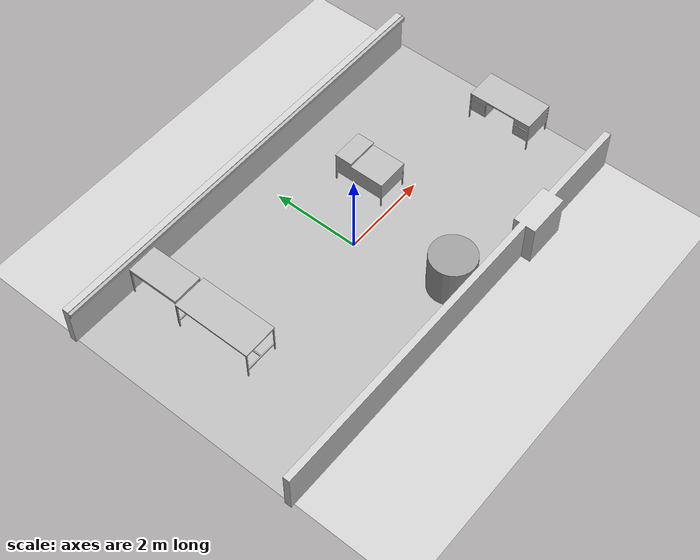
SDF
<sdf version="1.7">
 <world name="default">
  <gravity>0 0 -9.8</gravity>
  <magnetic_field>6e-06 2.3e-05 -4.2e-05</magnetic_field>
  <atmosphere type="adiabatic"/>
  <physics type="ode">
   <max_step_size>0.001</max_step_size>
   <real_time_factor>1</real_time_factor>
   <real_time_update_rate>1000</real_time_update_rate>
  </physics>
  <scene><ambient>0.4 0.4 0.4 1</ambient><background>0.7 0.7 0.7 1</background><shadows>1</shadows></scene>
  <spherical_coordinates>
   <surface_model>EARTH_WGS84</surface_model>
   <latitude_deg>0</latitude_deg>
   <longitude_deg>0</longitude_deg>
   <elevation>0</elevation>
   <heading_deg>0</heading_deg>
  </spherical_coordinates>
  <model name="gplane">
   <link name="body">
    <collision name="gplane_coll">
     <geometry><plane><normal>0 0 1</normal><size>10.075 13.18</size></plane></geometry>
     <surface><contact><ode><kp>1e+06</kp><kd>1</kd></ode></contact></surface>
     <laser_retro>2000</laser_retro>
    </collision>
    <visual name="gplane_vis">
     <geometry><plane><normal>0 0 1</normal><size>10.075 13.18</size></plane></geometry>
     <material>
      <script>
       <uri>model://base_materials/carpet/scripts</uri>
       <uri>model://base_materials/carpet/textures</uri>
       <name>carpet/carpet01</name>
      </script>
     </material>
     <cast_shadows>0</cast_shadows>
    </visual>
    <velocity_decay><linear>0</linear><angular>0</angular></velocity_decay>
   </link>
   <static>1</static>
  </model>
  <light name="inner_point_white1" type="point">
   <pose>4 5 4 0 -0 0</pose>
   <diffuse>0.2 0.2 0.2 1</diffuse>
   <specular>0.1 0.1 0.1 1</specular>
   <attenuation>
    <range>20</range>
    <linear>0.1</linear>
    <constant>0.2</constant>
    <quadratic>0</quadratic>
   </attenuation>
   <cast_shadows>0</cast_shadows>
   <direction>0 0 -1</direction>
   <spot><inner_angle>0</inner_angle><outer_angle>0</outer_angle><falloff>0</falloff></spot>
  </light>
  <light name="inner_point_white2" type="point">
   <pose>4 10 4 0 -0 0</pose>
   <diffuse>0.2 0.2 0.2 1</diffuse>
   <specular>0.1 0.1 0.1 1</specular>
   <attenuation>
    <range>20</range>
    <linear>0.1</linear>
    <constant>0.2</constant>
    <quadratic>0</quadratic>
   </attenuation>
   <cast_shadows>0</cast_shadows>
   <direction>0 0 -1</direction>
   <spot><inner_angle>0</inner_angle><outer_angle>0</outer_angle><falloff>0</falloff></spot>
  </light>
  <light name="inner_point_white3" type="point">
   <pose>8 5 4 0 -0 0</pose>
   <diffuse>0.2 0.2 0.2 1</diffuse>
   <specular>0.1 0.1 0.1 1</specular>
   <attenuation>
    <range>20</range>
    <linear>0.1</linear>
    <constant>0.2</constant>
    <quadratic>0</quadratic>
   </attenuation>
   <cast_shadows>0</cast_shadows>
   <direction>0 0 -1</direction>
   <spot><inner_angle>0</inner_angle><outer_angle>0</outer_angle><falloff>0</falloff></spot>
  </light>
  <light name="inner_point_white4" type="point">
   <pose>8 10 4 0 -0 0</pose>
   <diffuse>0.2 0.2 0.2 1</diffuse>
   <specular>0.1 0.1 0.1 1</specular>
   <attenuation>
    <range>20</range>
    <linear>0.1</linear>
    <constant>0.2</constant>
    <quadratic>0</quadratic>
   </attenuation>
   <cast_shadows>0</cast_shadows>
   <direction>0 0 -1</direction>
   <spot><inner_angle>0</inner_angle><outer_angle>0</outer_angle><falloff>0</falloff></spot>
  </light>
  <light name="inner_point_white5" type="point">
   <pose>4 5 4 0 -0 0</pose>
   <diffuse>0.2 0.2 0.2 1</diffuse>
   <specular>0.1 0.1 0.1 1</specular>
   <attenuation>
    <range>20</range>
    <linear>0.1</linear>
    <constant>0.2</constant>
    <quadratic>0</quadratic>
   </attenuation>
   <cast_shadows>0</cast_shadows>
   <direction>0 0 -1</direction>
   <spot><inner_angle>0</inner_angle><outer_angle>0</outer_angle><falloff>0</falloff></spot>
  </light>
  <light name="inner_point_white6" type="point">
   <pose>4 10 4 0 -0 0</pose>
   <diffuse>0.2 0.2 0.2 1</diffuse>
   <specular>0.1 0.1 0.1 1</specular>
   <attenuation>
    <range>20</range>
    <linear>0.1</linear>
    <constant>0.2</constant>
    <quadratic>0</quadratic>
   </attenuation>
   <cast_shadows>0</cast_shadows>
   <direction>0 0 -1</direction>
   <spot><inner_angle>0</inner_angle><outer_angle>0</outer_angle><falloff>0</falloff></spot>
  </light>
  <light name="inner_point_white7" type="point">
   <pose>8 5 4 0 -0 0</pose>
   <diffuse>0.2 0.2 0.2 1</diffuse>
   <specular>0.1 0.1 0.1 1</specular>
   <attenuation>
    <range>20</range>
    <linear>0.1</linear>
    <constant>0.2</constant>
    <quadratic>0</quadratic>
   </attenuation>
   <cast_shadows>0</cast_shadows>
   <direction>0 0 -1</direction>
   <spot><inner_angle>0</inner_angle><outer_angle>0</outer_angle><falloff>0</falloff></spot>
  </light>
  <light name="inner_point_white8" type="point">
   <pose>8 10 4 0 -0 0</pose>
   <diffuse>0.2 0.2 0.2 1</diffuse>
   <specular>0.1 0.1 0.1 1</specular>
   <attenuation>
    <range>20</range>
    <linear>0.1</linear>
    <constant>0.2</constant>
    <quadratic>0</quadratic>
   </attenuation>
   <cast_shadows>0</cast_shadows>
   <direction>0 0 -1</direction>
   <spot><inner_angle>0</inner_angle><outer_angle>0</outer_angle><falloff>0</falloff></spot>
  </light>
  <model name="Table_05">
   <link name="link_0">
    <inertial>
     <mass>7</mass>
     <inertia>
      <ixx>0.166667</ixx>
      <ixy>0</ixy>
      <ixz>0</ixz>
      <iyy>0.166667</iyy>
      <iyz>0</iyz>
      <izz>0.166667</izz>
     </inertia>
    </inertial>
    <visual name="visual">
     <geometry><mesh><uri>model://BioRoboticsLab/meshes/Table_05.dae</uri><scale>1 1 1</scale></mesh></geometry>
     <material><lighting>1</lighting><shader type="pixel"/></material>
    </visual>
    <collision name="collision">
     <geometry><mesh><uri>model://BioRoboticsLab/meshes/Table_05.dae</uri><scale>1 1 1</scale></mesh></geometry>
     <surface>
      <friction>
       <ode><mu>1</mu><mu2>1</mu2><fdir1>0 0 0</fdir1><slip1>0</slip1><slip2>0</slip2></ode>
       <torsional>
        <coefficient>1</coefficient>
        <patch_radius>0</patch_radius>
        <surface_radius>0</surface_radius>
        <use_patch_radius>1</use_patch_radius>
        <ode><slip>0</slip></ode>
       </torsional>
      </friction>
      <bounce><restitution_coefficient>0</restitution_coefficient><threshold>1e+06</threshold></bounce>
      <contact>
       <collide_without_contact>0</collide_without_contact>
       <collide_without_contact_bitmask>1</collide_without_contact_bitmask>
       <collide_bitmask>1</collide_bitmask>
       <ode>
        <soft_cfm>0</soft_cfm>
        <soft_erp>0.2</soft_erp>
        <kp>1e+13</kp>
        <kd>1</kd>
        <max_vel>0.01</max_vel>
        <min_depth>0</min_depth>
       </ode>
       <bullet>
        <split_impulse>1</split_impulse>
        <split_impulse_penetration_threshold>-0.01</split_impulse_penetration_threshold>
        <soft_cfm>0</soft_cfm>
        <soft_erp>0.2</soft_erp>
        <kp>1e+13</kp>
        <kd>1</kd>
       </bullet>
      </contact>
     </surface>
    </collision>
   </link>
   <static>1</static>
   <pose>-3.23946 2.02988 0 0 -0 1.58727</pose>
  </model>
  <model name="Table_03_0">
   <link name="link_0">
    <inertial>
     <mass>8</mass>
     <inertia>
      <ixx>0.166667</ixx>
      <ixy>0</ixy>
      <ixz>0</ixz>
      <iyy>0.166667</iyy>
      <iyz>0</iyz>
      <izz>0.166667</izz>
     </inertia>
    </inertial>
    <visual name="visual">
     <geometry><mesh><uri>model://BioRoboticsLab/meshes/Table_03.dae</uri><scale>1 1 1</scale></mesh></geometry>
     <material><lighting>1</lighting><shader type="pixel"/></material>
    </visual>
    <collision name="collision">
     <geometry><mesh><uri>model://BioRoboticsLab/meshes/Table_03.dae</uri><scale>1 1 1</scale></mesh></geometry>
     <surface>
      <friction>
       <ode><mu>1</mu><mu2>1</mu2><fdir1>0 0 0</fdir1><slip1>0</slip1><slip2>0</slip2></ode>
       <torsional>
        <coefficient>1</coefficient>
        <patch_radius>0</patch_radius>
        <surface_radius>0</surface_radius>
        <use_patch_radius>1</use_patch_radius>
        <ode><slip>0</slip></ode>
       </torsional>
      </friction>
      <bounce><restitution_coefficient>0</restitution_coefficient><threshold>1e+06</threshold></bounce>
      <contact>
       <collide_without_contact>0</collide_without_contact>
       <collide_without_contact_bitmask>1</collide_without_contact_bitmask>
       <collide_bitmask>1</collide_bitmask>
       <ode>
        <soft_cfm>0</soft_cfm>
        <soft_erp>0.2</soft_erp>
        <kp>1e+13</kp>
        <kd>1</kd>
        <max_vel>0.01</max_vel>
        <min_depth>0</min_depth>
       </ode>
       <bullet>
        <split_impulse>1</split_impulse>
        <split_impulse_penetration_threshold>-0.01</split_impulse_penetration_threshold>
        <soft_cfm>0</soft_cfm>
        <soft_erp>0.2</soft_erp>
        <kp>1e+13</kp>
        <kd>1</kd>
       </bullet>
      </contact>
     </surface>
    </collision>
   </link>
   <static>1</static>
   <pose>-3.22481 0.4922 0 0 0 -1.56459</pose>
  </model>
  <model name="Desk_01">
   <link name="link_0">
    <inertial>
     <mass>35</mass>
     <inertia>
      <ixx>0.166667</ixx>
      <ixy>0</ixy>
      <ixz>0</ixz>
      <iyy>0.166667</iyy>
      <iyz>0</iyz>
      <izz>0.166667</izz>
     </inertia>
    </inertial>
    <visual name="visual">
     <geometry><mesh><uri>model://BioRoboticsLab/meshes/Desk_01.dae</uri><scale>1 1 1</scale></mesh></geometry>
     <material><lighting>1</lighting><shader type="pixel"/></material>
    </visual>
    <collision name="collision">
     <geometry><mesh><uri>model://BioRoboticsLab/meshes/Desk_01.dae</uri><scale>1 1 1</scale></mesh></geometry>
     <surface>
      <friction>
       <ode><mu>1</mu><mu2>1</mu2><fdir1>0 0 0</fdir1><slip1>0</slip1><slip2>0</slip2></ode>
       <torsional>
        <coefficient>1</coefficient>
        <patch_radius>0</patch_radius>
        <surface_radius>0</surface_radius>
        <use_patch_radius>1</use_patch_radius>
        <ode><slip>0</slip></ode>
       </torsional>
      </friction>
      <bounce><restitution_coefficient>0</restitution_coefficient><threshold>1e+06</threshold></bounce>
      <contact>
       <collide_without_contact>0</collide_without_contact>
       <collide_without_contact_bitmask>1</collide_without_contact_bitmask>
       <collide_bitmask>1</collide_bitmask>
       <ode>
        <soft_cfm>0</soft_cfm>
        <soft_erp>0.2</soft_erp>
        <kp>1e+13</kp>
        <kd>1</kd>
        <max_vel>0.01</max_vel>
        <min_depth>0</min_depth>
       </ode>
       <bullet>
        <split_impulse>1</split_impulse>
        <split_impulse_penetration_threshold>-0.01</split_impulse_penetration_threshold>
        <soft_cfm>0</soft_cfm>
        <soft_erp>0.2</soft_erp>
        <kp>1e+13</kp>
        <kd>1</kd>
       </bullet>
      </contact>
     </surface>
    </collision>
   </link>
   <static>1</static>
   <pose>4.60448 -0.497618 0 0 -0 1.57832</pose>
  </model>
  <model name="Desk_02">
   <link name="link_0">
    <inertial>
     <mass>19</mass>
     <inertia>
      <ixx>0.166667</ixx>
      <ixy>0</ixy>
      <ixz>0</ixz>
      <iyy>0.166667</iyy>
      <iyz>0</iyz>
      <izz>0.166667</izz>
     </inertia>
    </inertial>
    <visual name="visual">
     <geometry><mesh><uri>model://BioRoboticsLab/meshes/Desk_02.dae</uri><scale>1 1 1</scale></mesh></geometry>
     <material><lighting>1</lighting><shader type="pixel"/></material>
    </visual>
    <collision name="collision">
     <geometry><mesh><uri>model://BioRoboticsLab/meshes/Desk_02.dae</uri><scale>1 1 1</scale></mesh></geometry>
     <surface>
      <friction>
       <ode><mu>1</mu><mu2>1</mu2><fdir1>0 0 0</fdir1><slip1>0</slip1><slip2>0</slip2></ode>
       <torsional>
        <coefficient>1</coefficient>
        <patch_radius>0</patch_radius>
        <surface_radius>0</surface_radius>
        <use_patch_radius>1</use_patch_radius>
        <ode><slip>0</slip></ode>
       </torsional>
      </friction>
      <bounce><restitution_coefficient>0</restitution_coefficient><threshold>1e+06</threshold></bounce>
      <contact>
       <collide_without_contact>0</collide_without_contact>
       <collide_without_contact_bitmask>1</collide_without_contact_bitmask>
       <collide_bitmask>1</collide_bitmask>
       <ode>
        <soft_cfm>0</soft_cfm>
        <soft_erp>0.2</soft_erp>
        <kp>1e+13</kp>
        <kd>1</kd>
        <max_vel>0.01</max_vel>
        <min_depth>0</min_depth>
       </ode>
       <bullet>
        <split_impulse>1</split_impulse>
        <split_impulse_penetration_threshold>-0.01</split_impulse_penetration_threshold>
        <soft_cfm>0</soft_cfm>
        <soft_erp>0.2</soft_erp>
        <kp>1e+13</kp>
        <kd>1</kd>
       </bullet>
      </contact>
     </surface>
    </collision>
   </link>
   <static>1</static>
   <pose>1.4839 0.938157 0 0 0 -1.56403</pose>
  </model>
  <model name="Lab_Mesh">
   <link name="link_0">
    <inertial>
     <mass>100000</mass>
     <inertia>
      <ixx>0.166667</ixx>
      <ixy>0</ixy>
      <ixz>0</ixz>
      <iyy>0.166667</iyy>
      <iyz>0</iyz>
      <izz>0.166667</izz>
     </inertia>
    </inertial>
    <visual name="visual">
     <geometry><mesh><uri>model://BioRoboticsLab/meshes/Lab_Mesh.dae</uri><scale>1 1 1</scale></mesh></geometry>
     <material><lighting>1</lighting><shader type="pixel"/></material>
    </visual>
    <collision name="collision">
     <geometry><mesh><uri>model://BioRoboticsLab/meshes/Lab_Mesh.dae</uri><scale>1 1 1</scale></mesh></geometry>
     <surface>
      <friction>
       <ode><mu>1</mu><mu2>1</mu2><fdir1>0 0 0</fdir1><slip1>0</slip1><slip2>0</slip2></ode>
       <torsional>
        <coefficient>1</coefficient>
        <patch_radius>0</patch_radius>
        <surface_radius>0</surface_radius>
        <use_patch_radius>1</use_patch_radius>
        <ode><slip>0</slip></ode>
       </torsional>
      </friction>
      <bounce><restitution_coefficient>0</restitution_coefficient><threshold>1e+06</threshold></bounce>
      <contact>
       <collide_without_contact>0</collide_without_contact>
       <collide_without_contact_bitmask>1</collide_without_contact_bitmask>
       <collide_bitmask>1</collide_bitmask>
       <ode>
        <soft_cfm>0</soft_cfm>
        <soft_erp>0.2</soft_erp>
        <kp>1e+13</kp>
        <kd>1</kd>
        <max_vel>0.01</max_vel>
        <min_depth>0</min_depth>
       </ode>
       <bullet>
        <split_impulse>1</split_impulse>
        <split_impulse_penetration_threshold>-0.01</split_impulse_penetration_threshold>
        <soft_cfm>0</soft_cfm>
        <soft_erp>0.2</soft_erp>
        <kp>1e+13</kp>
        <kd>1</kd>
       </bullet>
      </contact>
     </surface>
    </collision>
   </link>
   <static>1</static>
   <pose>-0.092622 0.025231 0 0 -0 0</pose>
  </model>
  <model name="Lab_Floor">
   <link name="link_0">
    <inertial>
     <mass>1</mass>
     <inertia>
      <ixx>0.166667</ixx>
      <ixy>0</ixy>
      <ixz>0</ixz>
      <iyy>0.166667</iyy>
      <iyz>0</iyz>
      <izz>0.166667</izz>
     </inertia>
    </inertial>
    <visual name="visual">
     <geometry><mesh><uri>model://BioRoboticsLab/meshes/Lab_Floor.dae</uri><scale>1 1 1</scale></mesh></geometry>
     <material><lighting>1</lighting><shader type="pixel"/></material>
    </visual>
   </link>
   <static>1</static>
   <pose>0 0 0.005 0 -0 0</pose>
  </model>
  <model name="unit_cylinder">
   <pose>0.463947 -2.08269 0.499998 0 -0 0</pose>
   <link name="link">
    <inertial>
     <mass>1</mass>
     <inertia><ixx>0.145833</ixx><ixy>0</ixy><ixz>0</ixz><iyy>0.145833</iyy><iyz>0</iyz><izz>0.125</izz></inertia>
    </inertial>
    <collision name="collision">
     <geometry><cylinder><radius>0.5</radius><length>1</length></cylinder></geometry>
    </collision>
    <visual name="visual">
     <geometry><cylinder><radius>0.5</radius><length>1</length></cylinder></geometry>
     <material>
      <script><name>Gazebo/Grey</name><uri>file://media/materials/scripts/gazebo.material</uri></script>
     </material>
    </visual>
   </link>
  </model>
 </world>
</sdf>
